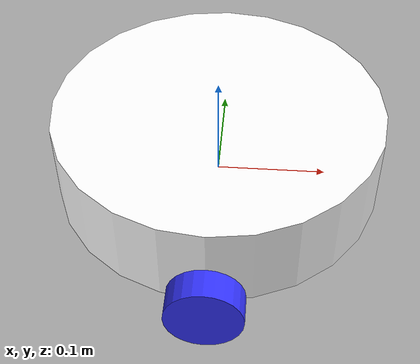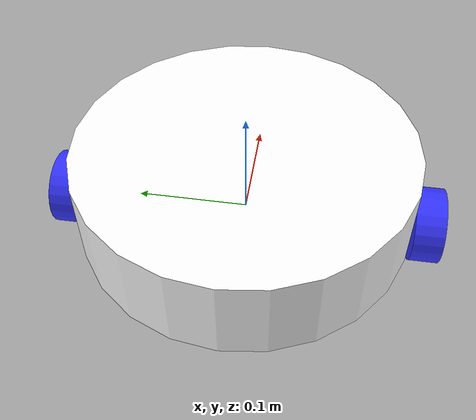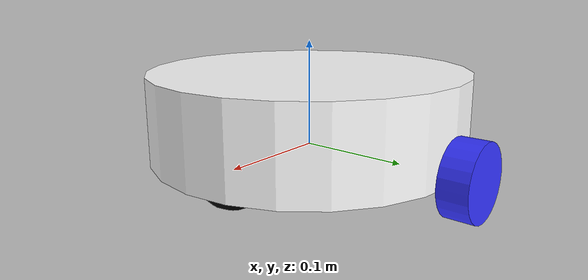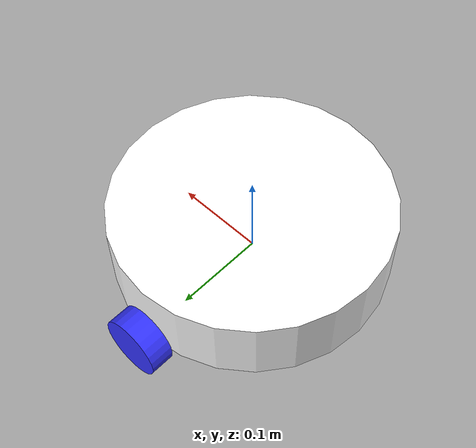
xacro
<?xml version="1.0"?>
<robot xmlns:xacro="http://www.ros.org/wiki/xacro" name="my_robot">

    <!-- Include inertial macros -->
    <xacro:include filename="inertial_macros.xacro"/>

    <!-- Declaring colours used -->
    <material name="white">
        <color rgba="1 1 1 1"/>
    </material>

    <material name="orange">
        <color rgba="1 0.3 0.1 1"/>
    </material>

    <material name="blue">
        <color rgba="0.2 0.2 1 1"/>
    </material>

    <material name="black">
        <color rgba="0 0 0 1"/>
    </material>

    <material name="red">
        <color rgba="1 0 0 1"/>
    </material>

    <!-- BASE LINK -->
    <link name="base_link">
    </link>

    <!-- BASE_FOOTPRINT LINK -->
    <joint name="base_footprint_joint" type="fixed">
       <parent link="base_link"/>
       <child link="base_footprint"/>
       <origin xyz="0 0 0" rpy="0 0 0"/>
    </joint>

    <link name="base_footprint">
    </link>

    <!-- CHASSIS LINK -->
    <joint name="chassis_joint" type="fixed">
        <parent link="base_link"/>
        <child link="chassis"/>
        <origin xyz="0 0 0"/>
    </joint>

    <link name="chassis">
        <visual>
            <origin xyz="0 0 0.0335" rpy="0 0 0"/>
            <geometry>
                <cylinder length="0.08" radius="0.15" />
            </geometry>
            <material name="white"/>
        </visual>
        <collision>
            <origin xyz="0 0 0.0335" rpy="0 0 0"/>
            <geometry>
                <cylinder length="0.08" radius="0.15" />
            </geometry>
        </collision>
        <xacro:inertial_cylinder mass="0.5" length="0.08" radius="0.15">
            <origin xyz="0 0 0.0335" rpy="0 0 0"/>
        </xacro:inertial_cylinder>
    </link>

    <gazebo reference="chassis">
            <material>Gazebo/White</material>
    </gazebo>

    <!-- LEFT WHEEL -->
    <joint name="left_wheel_joint" type="continuous">
        <parent link="base_link"/>
        <child link="left_wheel"/>
        <origin xyz="0 0.163 0" rpy="-${pi/2} 0 0"/>
        <axis xyz="0 0 1"/>
    </joint>

    <link name="left_wheel">
        <visual>
            <geometry>
                <cylinder length="0.026" radius="0.0335" />
            </geometry>
            <material name="blue"/>
        </visual>
        <collision>
            <geometry>
                <sphere radius="0.0335" />
            </geometry>
        </collision>
        <xacro:inertial_cylinder mass="0.1" length="0.026" radius="0.0335">
            <origin xyz="0 0 0" rpy="0 0 0"/>
        </xacro:inertial_cylinder>
    </link>

    <gazebo reference="left_wheel">
          <material>Gazebo/Blue</material>
    </gazebo>

    <!-- RIGHT WHEEL -->
    <joint name="right_wheel_joint" type="continuous">
        <parent link="base_link"/>
        <child link="right_wheel"/>
        <origin xyz="0 -0.163 0" rpy="${pi/2} 0 0"/>
        <axis xyz="0 0 -1"/>
    </joint>

    <link name="right_wheel">
        <visual>
            <geometry>
                <cylinder length="0.026" radius="0.0335" />
            </geometry>
            <material name="blue"/>
        </visual>
        <collision>
            <geometry>
                <sphere radius="0.0335" />
            </geometry>
        </collision>
        <xacro:inertial_cylinder mass="0.1" length="0.026" radius="0.0335">
            <origin xyz="0 0 0" rpy="0 0 0"/>
        </xacro:inertial_cylinder>

    </link>

    <gazebo reference="right_wheel">
          <material>Gazebo/Blue</material>
   </gazebo>

    <!-- FRONT CASTER WHEEL -->
    <joint name="front_caster_wheel_joint" type="fixed">
        <parent link="chassis"/>
        <child link="front_caster_wheel"/>
        <origin xyz="0.1 0 0" rpy="0 0 0"/>
    </joint>

    <link name="front_caster_wheel">
        <visual>
            <geometry>
                <sphere radius="0.0335" />
            </geometry>
            <material name="black"/>
        </visual>
        <collision>
            <geometry>
                <sphere radius="0.0335" />
            </geometry>
        </collision>
        <xacro:inertial_sphere mass="0.1" radius="0.0335">
            <origin xyz="0 0 0" rpy="0 0 0"/>
        </xacro:inertial_sphere>
    </link>

    <gazebo reference="front_caster_wheel">
            <material>Gazebo/Black</material>
            <mu1 value="0.001"/>
            <mu2 value="0.001"/>
    </gazebo>

    <!-- BACK CASTER WHEEL -->
    <joint name="back_caster_wheel_joint" type="fixed">
        <parent link="chassis"/>
        <child link="back_caster_wheel"/>
        <origin xyz="-0.1 0 0" rpy="0 0 0"/>
    </joint>

    <link name="back_caster_wheel">
        <visual>
            <geometry>
                <sphere radius="0.0335" />
            </geometry>
            <material name="black"/>
        </visual>
        <collision>
            <geometry>
                <sphere radius="0.0335" />
            </geometry>
        </collision>
        <xacro:inertial_sphere mass="0.1" radius="0.0335">
            <origin xyz="0 0 0" rpy="0 0 0"/>
        </xacro:inertial_sphere>
    </link>

    <gazebo reference="back_caster_wheel">
            <material>Gazebo/Black</material>
            <mu1 value="0.001"/>
            <mu2 value="0.001"/>
    </gazebo>

</robot>
